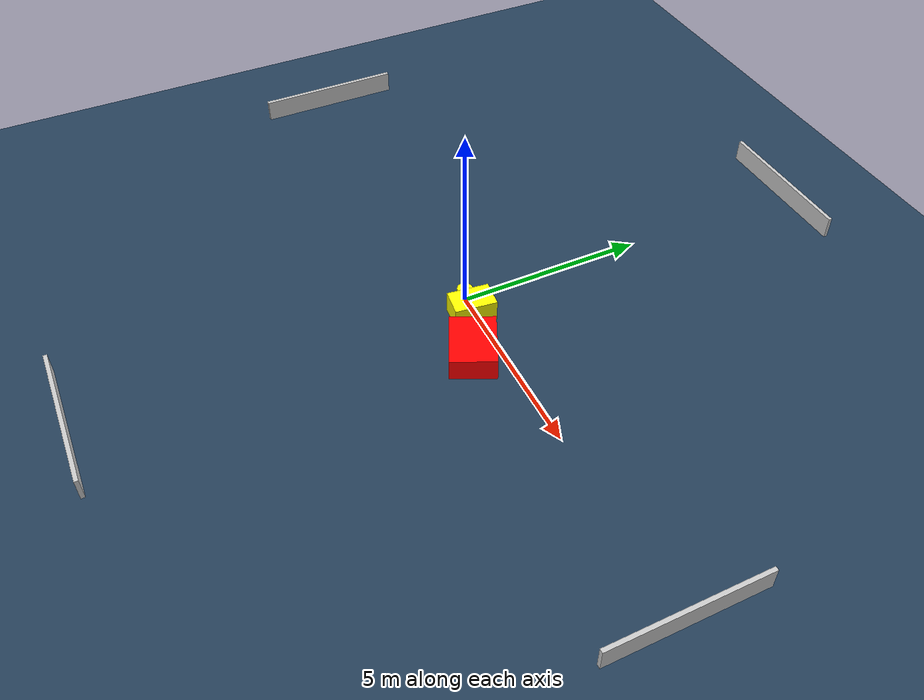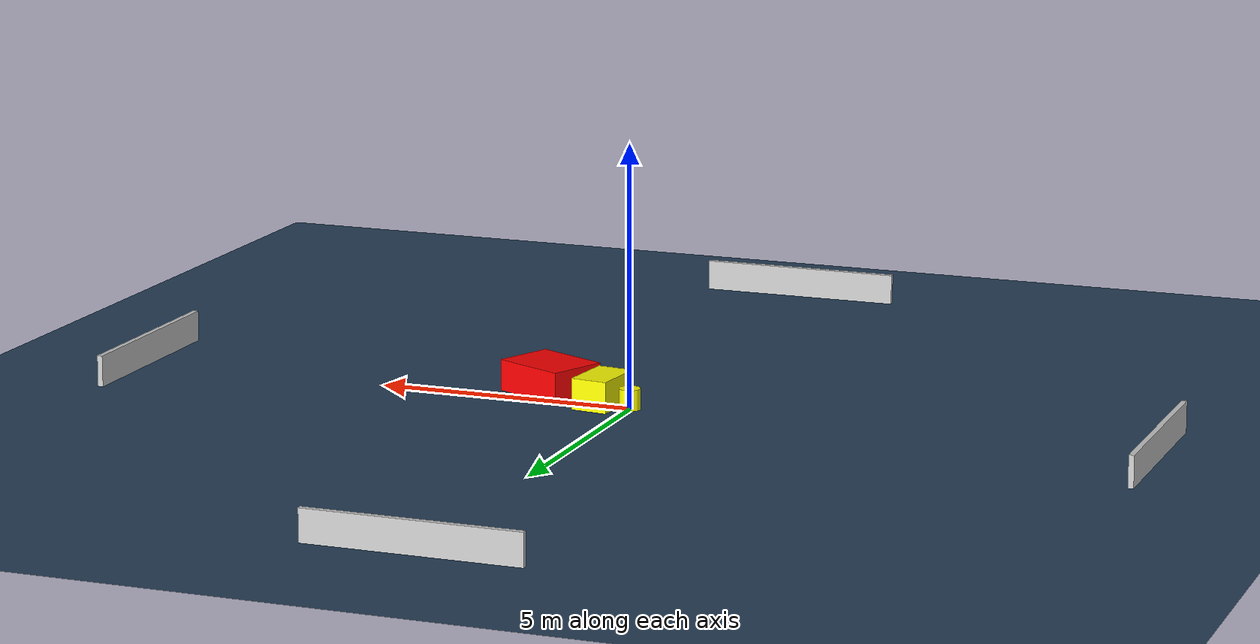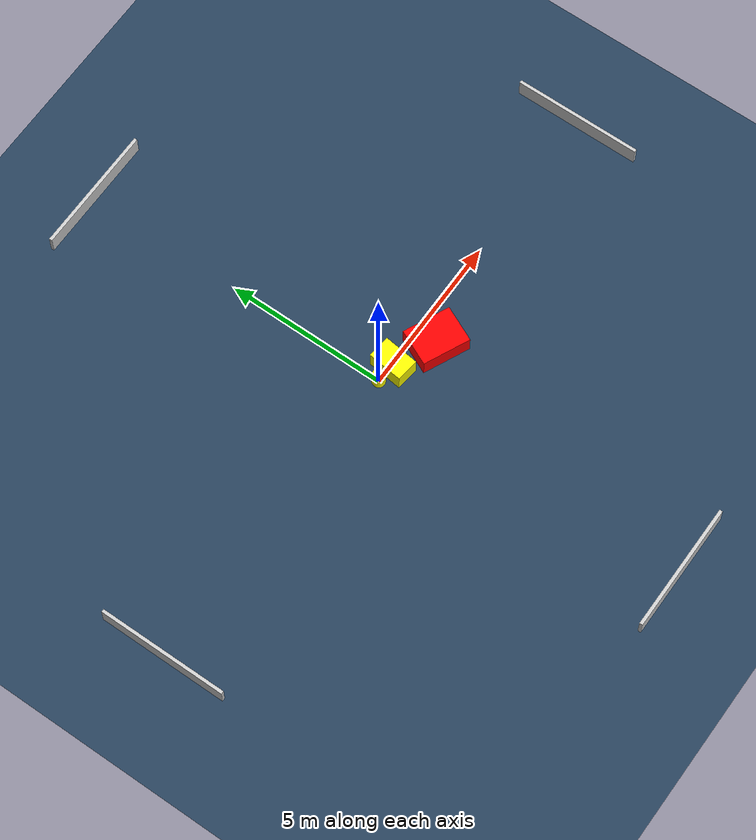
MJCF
<?xml version="1.0" ?>
<mujoco model="generated_environment">
  <option timestep="0.01" integrator="RK4" cone="elliptic"/>
  <default>
    <geom density="1"/>
  </default>
  <asset>
    <texture builtin="gradient" height="3072" name="skybox" rgb1="0.3 0.5 0.7" rgb2="0 0 0" type="skybox" width="512"/>
    <texture builtin="checker" height="300" name="groundplane" rgb1="0.2 0.3 0.4" rgb2="0.1 0.2 0.3" type="2d" width="300"/>
    <material name="groundplane" reflectance="0.2" texrepeat="5 5" texture="groundplane"/>
  </asset>
  <worldbody>
    <light dir="0 0 -1" directional="true" pos="0 0 1.5"/>
    <geom condim="3" friction="0.5 0.005 0.001" material="groundplane" name="floor" pos="0 0 0" size="0 0 0.05" type="plane"/>
    <body name="walls">
      <geom name="wall_1" condim="4" pos="-10.0 0.0 0.3" rgba="0.800000011920929 0.800000011920929 0.800000011920929 1.0" size="0.05 2.0 0.3" type="box"/>
      <geom name="wall_2" condim="4" pos="10.0 0.0 0.3" rgba="0.800000011920929 0.800000011920929 0.800000011920929 1.0" size="0.05 2.0 0.3" type="box"/>
      <geom name="wall_3" condim="4" pos="0.0 -10.0 0.3" rgba="0.800000011920929 0.800000011920929 0.800000011920929 1.0" size="2.0 0.05 0.3" type="box"/>
      <geom name="wall_4" condim="4" pos="0.0 10.0 0.3" rgba="0.800000011920929 0.800000011920929 0.800000011920929 1.0" size="2.0 0.05 0.3" type="box"/>
    </body>
    <body name="robot">
      <joint name="joint_x" type="slide" pos="0 0 0" axis="1 0 0"/>
      <joint name="joint_y" type="slide" pos="0 0 0" axis="0 1 0"/>
      <geom name="robot" type="cylinder" pos="0.0 0.0 0.2" size="0.2 0.2 0.0" mass="5.0" friction="1.0 0.005 0.0001" condim="4" rgba="1.0 1.0 0.0 1.0"/>
    </body>
    <body name="obstacle_1_movable">
      <geom name="obstacle_1_movable" condim="4" pos="0.5798738177106693 -0.07990269893778981 0.3" euler="0 0 353.03034485567076" friction="0.0 0.005 0.001" rgba="1.0 1.0 0.0 1.0" size="0.3555156840164843 0.5466289784311239 0.3" type="box" mass="0.1"/>
      <joint type="free"/>
    </body>
    <body name="obstacle_2_static">
      <geom name="obstacle_2_static" condim="4" pos="1.8582453142278437 -0.6673736690965207 0.3" euler="0 0 335.13673056427604" friction="0.0 0.005 0.001" rgba="1.0 0.0 0.0 1.0" size="0.7512861950471184 0.5815697222799698 0.3" type="box"/>
    </body>
  </worldbody>
  <actuator>
    <motor name="actuator_x" joint="joint_x" gear="1" ctrlrange="-1 1"/>
    <motor name="actuator_y" joint="joint_y" gear="1" ctrlrange="-1 1"/>
  </actuator>
</mujoco>
